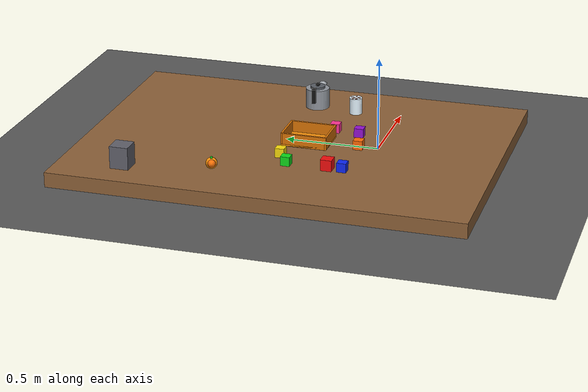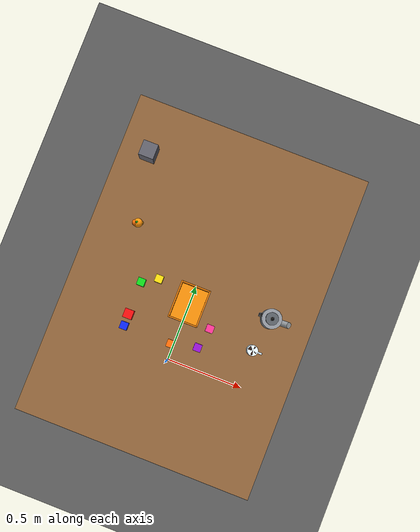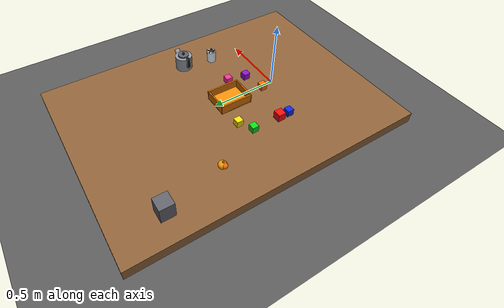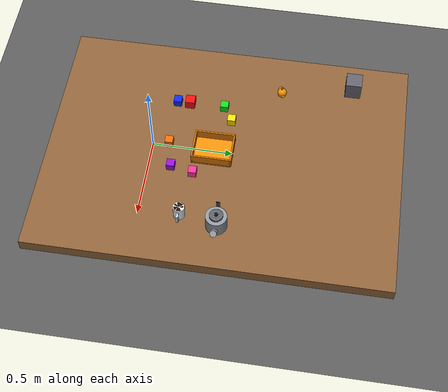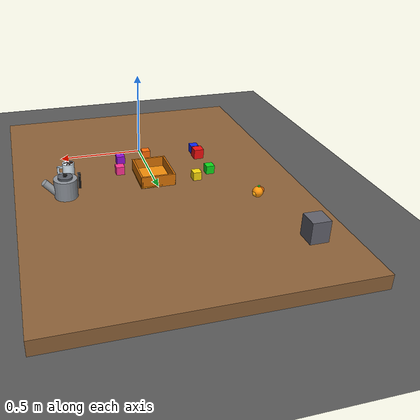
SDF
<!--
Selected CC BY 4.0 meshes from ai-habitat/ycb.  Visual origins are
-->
<sdf version="1.7">
 <world name="ur3_pick_place">
  <physics name="baseline_physics" type="ode">
   <max_step_size>0.001</max_step_size>
   <real_time_factor>1.0</real_time_factor>
   <gravity>0 0 -9.81</gravity>
  </physics>
  <plugin filename="libignition-gazebo-physics-system.so" name="ignition::gazebo::systems::Physics"/>
  <plugin filename="libignition-gazebo-user-commands-system.so" name="ignition::gazebo::systems::UserCommands"/>
  <plugin filename="libignition-gazebo-scene-broadcaster-system.so" name="ignition::gazebo::systems::SceneBroadcaster"/>
  <plugin filename="libignition-gazebo-sensors-system.so" name="ignition::gazebo::systems::Sensors">
   <render_engine>ogre2</render_engine>
  </plugin>
  <plugin filename="libignition-gazebo-contact-system.so" name="ignition::gazebo::systems::Contact"/>
  <scene>
   <ambient>0.45 0.45 0.45 1</ambient>
   <background>0.75 0.80 0.85 1</background>
   <shadows>true</shadows>
  </scene>
  <light name="key_light" type="directional">
   <pose>0 0 2 0 0 0</pose>
   <diffuse>0.9 0.9 0.9 1</diffuse>
   <specular>0.2 0.2 0.2 1</specular>
   <direction>-0.4 0.2 -1.0</direction>
  </light>
  <model name="ground_plane">
   <static>true</static>
   <pose>0 0 -0.081 0 0 0</pose>
   <link name="link">
    <collision name="collision">
     <geometry><plane><normal>0 0 1</normal><size>10 10</size></plane></geometry>
    </collision>
    <visual name="visual">
     <geometry><plane><normal>0 0 1</normal><size>10 10</size></plane></geometry>
     <material><ambient>0.25 0.25 0.25 1</ambient><diffuse>0.35 0.35 0.35 1</diffuse></material>
    </visual>
   </link>
   <plugin filename="ignition-gazebo-label-system" name="ignition::gazebo::systems::Label">
    <label>41</label>
   </plugin>
  </model>
  <model name="work_table">
   <static>true</static>
   <pose>0 0.45 -0.04 0 0 0</pose>
   <link name="table_link">
    <collision name="collision"><geometry><box><size>1.6 2.2 0.08</size></box></geometry></collision>
    <visual name="visual">
     <geometry><box><size>1.6 2.2 0.08</size></box></geometry>
     <material><ambient>0.45 0.30 0.18 1</ambient><diffuse>0.55 0.38 0.22 1</diffuse></material>
    </visual>
   </link>
   <plugin filename="ignition-gazebo-label-system" name="ignition::gazebo::systems::Label">
    <label>40</label>
   </plugin>
  </model>
  <model name="top_table_camera">
   <static>true</static>
   <pose>-0.000000000000 1.489230484541 1.800000000000 0.000000000000 1.047197551197 -1.570796326795</pose>
   <link name="top_table_camera_link">
    <sensor name="top_table_rgbd" type="rgbd_camera">
     <camera>
      <horizontal_fov>1.10</horizontal_fov>
      <image><width>640</width><height>480</height><format>R8G8B8</format></image>
      <clip><near>0.10</near><far>3.0</far></clip>
      <depth_camera><clip><near>0.10</near><far>3.0</far></clip></depth_camera>
      <optical_frame_id>top_table_camera_optical_frame</optical_frame_id>
     </camera>
     <always_on>true</always_on>
     <update_rate>30</update_rate>
     <visualize>true</visualize>
     <topic>/top_table_camera</topic>
     <gz_frame_id>top_table_camera_optical_frame</gz_frame_id>
    </sensor>
    <sensor name="top_table_evaluation_labels" type="segmentation">
     <camera>
      <segmentation_type>semantic</segmentation_type>
      <horizontal_fov>1.10</horizontal_fov>
      <image><width>640</width><height>480</height></image>
      <clip><near>0.10</near><far>3.0</far></clip>
      <optical_frame_id>top_table_camera_optical_frame</optical_frame_id>
     </camera>
     <always_on>true</always_on>
     <update_rate>30</update_rate>
     <visualize>false</visualize>
     <topic>/top_table_camera/evaluation_labels</topic>
     <gz_frame_id>top_table_camera_optical_frame</gz_frame_id>
    </sensor>
   </link>
  </model>
  <model name="red_cube">
   <pose>-0.34 0.18 0.03 0 0 0</pose>
   <link name="cube_link">
    <inertial>
     <mass>0.08</mass>
     <inertia><ixx>0.000048</ixx><iyy>0.000048</iyy><izz>0.000048</izz></inertia>
    </inertial>
    <collision name="collision">
     <geometry><box><size>0.06 0.06 0.06</size></box></geometry>
     <surface><friction><ode><mu>1.2</mu><mu2>1.2</mu2></ode></friction></surface>
    </collision>
    <visual name="visual">
     <geometry><box><size>0.06 0.06 0.06</size></box></geometry>
     <material><ambient>0.8 0.03 0.03 1</ambient><diffuse>0.95 0.05 0.05 1</diffuse></material>
    </visual>
   </link>
   <plugin filename="ignition-gazebo-pose-publisher-system" name="gz::sim::systems::PosePublisher">
    <publish_link_pose>false</publish_link_pose>
    <publish_collision_pose>false</publish_collision_pose>
    <publish_visual_pose>false</publish_visual_pose>
    <publish_nested_model_pose>false</publish_nested_model_pose>
    <use_pose_vector_msg>true</use_pose_vector_msg>
    <static_publisher>false</static_publisher>
    <update_frequency>15</update_frequency>
   </plugin>
   <plugin filename="ignition-gazebo-label-system" name="ignition::gazebo::systems::Label">
    <label>1</label>
   </plugin>
  </model>
  <model name="blue_cube">
   <pose>-0.34 0.10 0.025 0 0 0</pose>
   <link name="cube_link">
    <inertial>
     <mass>0.06</mass>
     <inertia><ixx>0.000025</ixx><iyy>0.000025</iyy><izz>0.000025</izz></inertia>
    </inertial>
    <collision name="collision"><geometry><box><size>0.05 0.05 0.05</size></box></geometry></collision>
    <visual name="visual">
     <geometry><box><size>0.05 0.05 0.05</size></box></geometry>
     <material><ambient>0.03 0.10 0.8 1</ambient><diffuse>0.05 0.15 0.95 1</diffuse></material>
    </visual>
   </link>
   <plugin filename="ignition-gazebo-label-system" name="ignition::gazebo::systems::Label">
    <label>2</label>
   </plugin>
  </model>
  <model name="green_cube">
   <pose>-0.34 0.40 0.025 0 0 0</pose>
   <link name="cube_link">
    <inertial>
     <mass>0.06</mass>
     <inertia><ixx>0.000025</ixx><iyy>0.000025</iyy><izz>0.000025</izz></inertia>
    </inertial>
    <collision name="collision"><geometry><box><size>0.05 0.05 0.05</size></box></geometry></collision>
    <visual name="visual">
     <geometry><box><size>0.05 0.05 0.05</size></box></geometry>
     <material><ambient>0.03 0.65 0.08 1</ambient><diffuse>0.05 0.85 0.10 1</diffuse></material>
    </visual>
   </link>
   <plugin filename="ignition-gazebo-label-system" name="ignition::gazebo::systems::Label">
    <label>3</label>
   </plugin>
  </model>
  <model name="yellow_cube">
   <pose>-0.24 0.46 0.025 0 0 0</pose>
   <link name="cube_link">
    <inertial>
     <mass>0.06</mass>
     <inertia><ixx>0.000025</ixx><iyy>0.000025</iyy><izz>0.000025</izz></inertia>
    </inertial>
    <collision name="collision"><geometry><box><size>0.05 0.05 0.05</size></box></geometry></collision>
    <visual name="visual">
     <geometry><box><size>0.05 0.05 0.05</size></box></geometry>
     <material><ambient>0.80 0.68 0.02 1</ambient><diffuse>0.98 0.86 0.04 1</diffuse></material>
    </visual>
   </link>
   <plugin filename="ignition-gazebo-label-system" name="ignition::gazebo::systems::Label">
    <label>4</label>
   </plugin>
  </model>
  <model name="orange_cube">
   <pose>-0.02 0.10 0.025 0 0 0</pose>
   <link name="cube_link">
    <inertial>
     <mass>0.06</mass>
     <inertia><ixx>0.000025</ixx><iyy>0.000025</iyy><izz>0.000025</izz></inertia>
    </inertial>
    <collision name="collision"><geometry><box><size>0.05 0.05 0.05</size></box></geometry></collision>
    <visual name="visual">
     <geometry><box><size>0.05 0.05 0.05</size></box></geometry>
     <material><ambient>0.88 0.28 0.01 1</ambient><diffuse>1.00 0.42 0.02 1</diffuse></material>
    </visual>
   </link>
   <plugin filename="ignition-gazebo-label-system" name="ignition::gazebo::systems::Label">
    <label>5</label>
   </plugin>
  </model>
  <model name="purple_cube">
   <pose>0.15 0.14 0.025 0 0 0</pose>
   <link name="cube_link">
    <inertial>
     <mass>0.06</mass>
     <inertia><ixx>0.000025</ixx><iyy>0.000025</iyy><izz>0.000025</izz></inertia>
    </inertial>
    <collision name="collision"><geometry><box><size>0.05 0.05 0.05</size></box></geometry></collision>
    <visual name="visual">
     <geometry><box><size>0.05 0.05 0.05</size></box></geometry>
     <material><ambient>0.42 0.03 0.62 1</ambient><diffuse>0.58 0.06 0.82 1</diffuse></material>
    </visual>
   </link>
   <plugin filename="ignition-gazebo-label-system" name="ignition::gazebo::systems::Label">
    <label>6</label>
   </plugin>
  </model>
  <model name="pink_cube">
   <pose>0.18 0.28 0.025 0 0 0</pose>
   <link name="cube_link">
    <inertial>
     <mass>0.06</mass>
     <inertia><ixx>0.000025</ixx><iyy>0.000025</iyy><izz>0.000025</izz></inertia>
    </inertial>
    <collision name="collision"><geometry><box><size>0.05 0.05 0.05</size></box></geometry></collision>
    <visual name="visual">
     <geometry><box><size>0.05 0.05 0.05</size></box></geometry>
     <material><ambient>0.88 0.10 0.42 1</ambient><diffuse>1.00 0.20 0.58 1</diffuse></material>
    </visual>
   </link>
   <plugin filename="ignition-gazebo-label-system" name="ignition::gazebo::systems::Label">
    <label>7</label>
   </plugin>
  </model>
  <model name="mango">
   <pose>-0.50 0.75 0.030 0 0 0.35</pose>
   <link name="mango_link">
    <inertial>
     <mass>0.16</mass>
     <inertia><ixx>0.000060</ixx><iyy>0.000060</iyy><izz>0.000060</izz></inertia>
    </inertial>
    <collision name="fruit_collision"><geometry><sphere><radius>0.030</radius></sphere></geometry></collision>
    <visual name="mango_body">
     <geometry><sphere><radius>0.030</radius></sphere></geometry>
     <material><ambient>0.92 0.38 0.01 1</ambient><diffuse>1.0 0.58 0.03 1</diffuse></material>
    </visual>
    <visual name="mango_lobe">
     <pose>-0.019 0 0.004 0 0 0</pose>
     <geometry><sphere><radius>0.021</radius></sphere></geometry>
     <material><ambient>0.74 0.25 0.01 1</ambient><diffuse>0.95 0.43 0.02 1</diffuse></material>
    </visual>
    <visual name="mango_tip">
     <pose>0.021 0 -0.005 0 0 0</pose>
     <geometry><sphere><radius>0.014</radius></sphere></geometry>
     <material><ambient>0.96 0.56 0.03 1</ambient><diffuse>1.0 0.67 0.05 1</diffuse></material>
    </visual>
    <visual name="mango_leaf">
     <pose>-0.006 0 0.032 0 0.45 0</pose>
     <geometry><sphere><radius>0.007</radius></sphere></geometry>
     <material><ambient>0.05 0.40 0.04 1</ambient><diffuse>0.07 0.65 0.07 1</diffuse></material>
    </visual>
   </link>
   <plugin filename="ignition-gazebo-label-system" name="ignition::gazebo::systems::Label">
    <label>29</label>
   </plugin>
  </model>
  <model name="cup">
   <static>true</static>
   <pose>0.48 0.25 0.045 0 0 0</pose>
   <link name="cup_link">
    <collision name="cup_collision">
     <geometry><cylinder><radius>0.035</radius><length>0.090</length></cylinder></geometry>
    </collision>
    <visual name="ceramic_body">
     <geometry><cylinder><radius>0.035</radius><length>0.090</length></cylinder></geometry>
     <material>
      <ambient>0.80 0.87 0.92 1</ambient>
      <diffuse>0.90 0.96 1.0 1</diffuse>
      <specular>0.35 0.35 0.35 1</specular>
     </material>
    </visual>
    <visual name="coffee">
     <pose>0 0 0.043 0 0 0</pose>
     <geometry><cylinder><radius>0.029</radius><length>0.004</length></cylinder></geometry>
     <material><ambient>0.10 0.035 0.01 1</ambient><diffuse>0.18 0.06 0.015 1</diffuse></material>
    </visual>
    <visual name="handle_upper">
     <pose>0.047 0 0.022 0 0 0</pose>
     <geometry><box><size>0.030 0.012 0.012</size></box></geometry>
     <material><ambient>0.82 0.89 0.95 1</ambient></material>
    </visual>
    <visual name="handle_lower">
     <pose>0.047 0 -0.022 0 0 0</pose>
     <geometry><box><size>0.030 0.012 0.012</size></box></geometry>
     <material><ambient>0.82 0.89 0.95 1</ambient></material>
    </visual>
    <visual name="handle_side">
     <pose>0.060 0 0 0 0 0</pose>
     <geometry><box><size>0.012 0.012 0.052</size></box></geometry>
     <material><ambient>0.82 0.89 0.95 1</ambient></material>
    </visual>
   </link>
   <plugin filename="ignition-gazebo-label-system" name="ignition::gazebo::systems::Label">
    <label>30</label>
   </plugin>
  </model>
  <model name="kettle">
   <static>true</static>
   <pose>0.52 0.48 0.055 0 0 0</pose>
   <link name="kettle_link">
    <collision name="body_collision">
     <geometry><cylinder><radius>0.065</radius><length>0.110</length></cylinder></geometry>
    </collision>
    <visual name="steel_body">
     <geometry><cylinder><radius>0.065</radius><length>0.110</length></cylinder></geometry>
     <material>
      <ambient>0.34 0.36 0.38 1</ambient>
      <diffuse>0.56 0.58 0.61 1</diffuse>
      <specular>0.75 0.75 0.75 1</specular>
     </material>
    </visual>
    <visual name="lid">
     <pose>0 0 0.062 0 0 0</pose>
     <geometry><cylinder><radius>0.041</radius><length>0.012</length></cylinder></geometry>
     <material><ambient>0.18 0.20 0.22 1</ambient><diffuse>0.35 0.37 0.40 1</diffuse></material>
    </visual>
    <visual name="lid_knob">
     <pose>0 0 0.074 0 0 0</pose>
     <geometry><sphere><radius>0.012</radius></sphere></geometry>
     <material><ambient>0.04 0.04 0.04 1</ambient><diffuse>0.08 0.08 0.08 1</diffuse></material>
    </visual>
    <visual name="spout">
     <pose>0.085 0 0.012 0 0.72 0</pose>
     <geometry><cylinder><radius>0.020</radius><length>0.090</length></cylinder></geometry>
     <material><ambient>0.38 0.40 0.42 1</ambient><diffuse>0.62 0.64 0.66 1</diffuse></material>
    </visual>
    <visual name="handle_left">
     <pose>-0.076 0 0.030 0 0 0</pose>
     <geometry><box><size>0.014 0.022 0.080</size></box></geometry>
     <material><ambient>0.03 0.03 0.03 1</ambient><diffuse>0.07 0.07 0.07 1</diffuse></material>
    </visual>
    <visual name="handle_top">
     <pose>-0.076 0 0.072 0 0 0</pose>
     <geometry><box><size>0.014 0.022 0.014</size></box></geometry>
     <material><ambient>0.03 0.03 0.03 1</ambient><diffuse>0.07 0.07 0.07 1</diffuse></material>
    </visual>
   </link>
   <plugin filename="ignition-gazebo-label-system" name="ignition::gazebo::systems::Label">
    <label>31</label>
   </plugin>
  </model>
  <model name="target_bin">
   <static>true</static>
   <pose>0 0.38 0 0 0 0</pose>
   <link name="bin_link">
    <collision name="floor_collision">
     <pose>0 0 0.005 0 0 0</pose>
     <geometry><box><size>0.20 0.25 0.01</size></box></geometry>
    </collision>
    <visual name="floor_visual">
     <pose>0 0 0.005 0 0 0</pose>
     <geometry><box><size>0.20 0.25 0.01</size></box></geometry>
     <material><ambient>0.85 0.45 0.02 1</ambient><diffuse>0.95 0.55 0.03 1</diffuse></material>
    </visual>
    <collision name="front_collision">
     <pose>0.095 0 0.035 0 0 0</pose>
     <geometry><box><size>0.01 0.25 0.07</size></box></geometry>
    </collision>
    <visual name="front_visual">
     <pose>0.095 0 0.035 0 0 0</pose>
     <geometry><box><size>0.01 0.25 0.07</size></box></geometry>
     <material><ambient>0.85 0.45 0.02 1</ambient></material>
    </visual>
    <collision name="back_collision">
     <pose>-0.095 0 0.035 0 0 0</pose>
     <geometry><box><size>0.01 0.25 0.07</size></box></geometry>
    </collision>
    <visual name="back_visual">
     <pose>-0.095 0 0.035 0 0 0</pose>
     <geometry><box><size>0.01 0.25 0.07</size></box></geometry>
     <material><ambient>0.85 0.45 0.02 1</ambient></material>
    </visual>
    <collision name="left_collision">
     <pose>0 0.12 0.035 0 0 0</pose>
     <geometry><box><size>0.20 0.01 0.07</size></box></geometry>
    </collision>
    <visual name="left_visual">
     <pose>0 0.12 0.035 0 0 0</pose>
     <geometry><box><size>0.20 0.01 0.07</size></box></geometry>
     <material><ambient>0.85 0.45 0.02 1</ambient></material>
    </visual>
    <collision name="right_collision">
     <pose>0 -0.12 0.035 0 0 0</pose>
     <geometry><box><size>0.20 0.01 0.07</size></box></geometry>
    </collision>
    <visual name="right_visual">
     <pose>0 -0.12 0.035 0 0 0</pose>
     <geometry><box><size>0.20 0.01 0.07</size></box></geometry>
     <material><ambient>0.85 0.45 0.02 1</ambient></material>
    </visual>
   </link>
   <plugin filename="ignition-gazebo-label-system" name="ignition::gazebo::systems::Label">
    <label>32</label>
   </plugin>
  </model>
  <model name="uq_neutral_occluder">
   <static>true</static>
   <pose>-0.60 1.20 0.060 0 0 0</pose>
   <link name="occluder_link">
    <visual name="neutral_panel">
     <geometry><box><size>0.100 0.100 0.120</size></box></geometry>
     <material>
      <ambient>0.24 0.24 0.26 1</ambient>
      <diffuse>0.38 0.38 0.42 1</diffuse>
      <specular>0.05 0.05 0.05 1</specular>
     </material>
    </visual>
   </link>
   <plugin filename="ignition-gazebo-label-system" name="ignition::gazebo::systems::Label">
    <label>39</label>
   </plugin>
  </model>
 </world>
</sdf>
